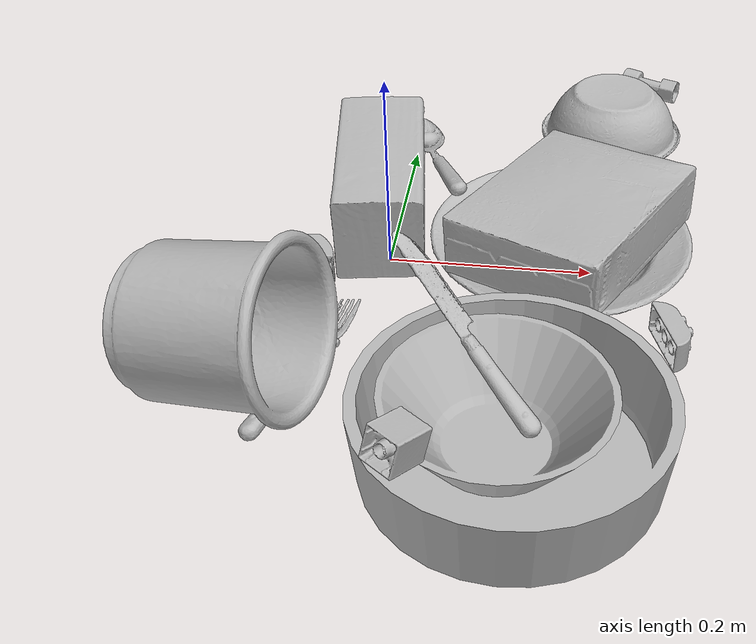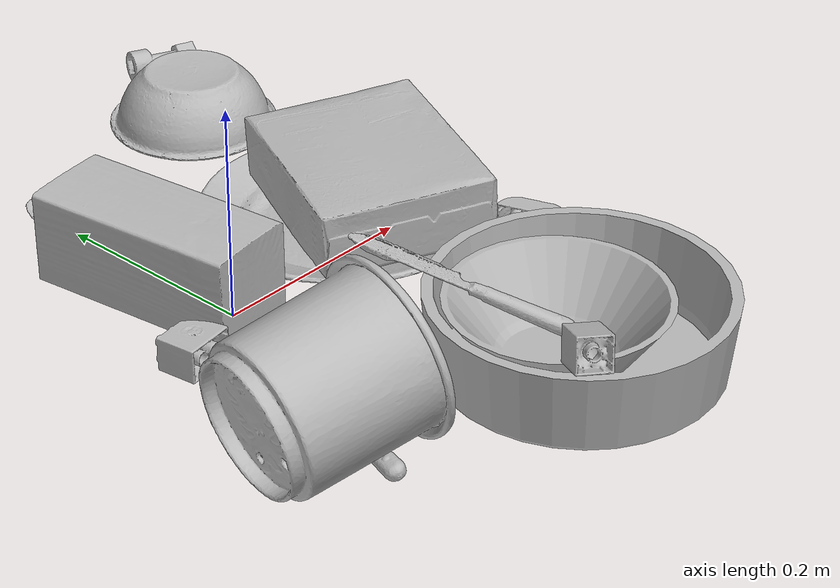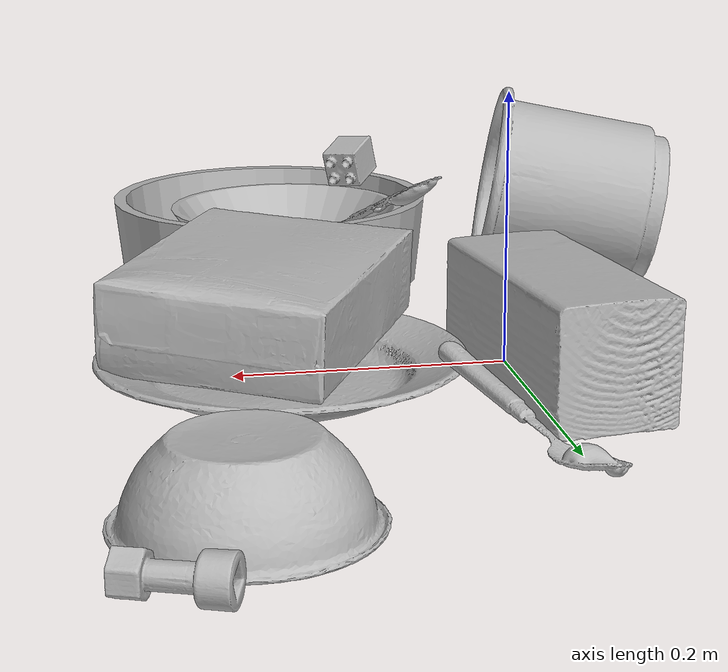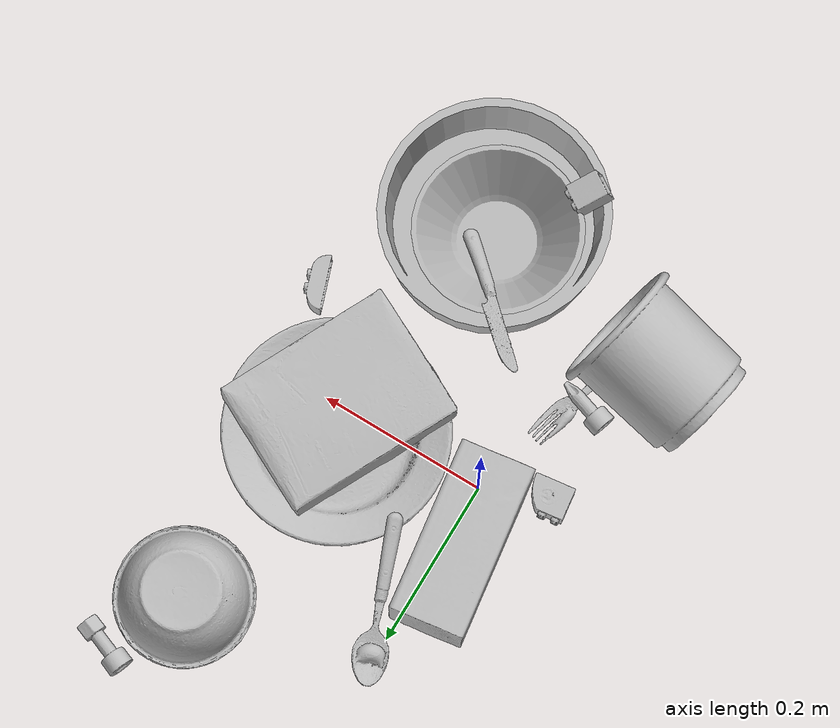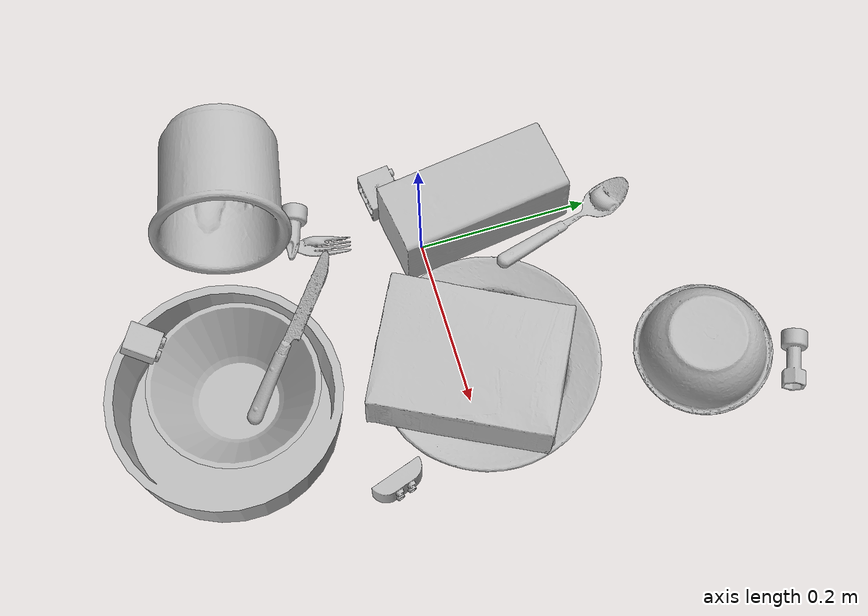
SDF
<sdf version="1.4">
  <world name="default">
    <light name="light1" type="point">
      <pose>0 0 1 0 0 0</pose>
      <diffuse>3 3 3 1</diffuse>
      <specular>3 3 3 1</specular>
    </light>
    <light name="light2" type="point">
      <pose>0 0.5 2 0 0 0</pose>
      <diffuse>1 1 1 1</diffuse>
      <specular>1 1 1 1</specular>
    </light>
    <light name="light3" type="point">
      <pose>0 0.5 2 0 0 0</pose>
      <diffuse>3 3 3 1</diffuse>
      <specular>3 3 3 1</specular>
    </light>
    <scene>
      <ambient>0.7 0.7 0.7</ambient>
    </scene>
    <model name="plate1">
      <link name="link_plate1">
        <collision name="default">
          <geometry>
            <mesh>
              <uri>model://pan_tefal/collision_meshes/collision.obj</uri>
              <scale>1.0 1.0 1.0</scale>
            </mesh>
          </geometry>
          <surface>
            <friction>
              <ode>
                <mu>0.5</mu>
                <mu2>0.5</mu2>
              </ode>
            </friction>
          <contact>
        <ode>
            <max_vel>0</max_vel>
            <min_depth>0.0001</min_depth>
            <kp>1e8</kp>
        </ode>
    </contact></surface>
        </collision>
        <visual name="default">
          <geometry>
            <mesh>
              <uri>model://pan_tefal/visual_meshes/visual.dae</uri>
              <scale>1.0 1.0 1.0</scale>
            </mesh>
          </geometry>
        </visual>
        <inertial>
          <mass>1.083925485610962</mass>
          <pose>-0.00018002053548116237 3.279013617429882e-05 -0.00851493701338768 0.000819031166138591 -0.00033013701589440335 -0.33186472787035126</pose>
          <inertia>
            <ixx>0.0074822875</ixx>
            <iyy>0.0075305253</iyy>
            <izz>0.013773448</izz>
            <ixy>0</ixy>
            <ixz>0</ixz>
            <iyz>0</iyz>
          </inertia>
        </inertial>
      </link>
      <pose>0.1406855583190918 -0.26691094040870667 0.03804999962449074 4.5627293055325796e-08 -3.6021995631304235e-08 1.5598404759642253</pose>
    </model>
    <model name="plate2">
      <link name="link_plate2">
        <collision name="default">
          <geometry>
            <mesh>
              <uri>model://plate/collision_meshes/collision.obj</uri>
              <scale>1.0 1.0 1.0</scale>
            </mesh>
          </geometry>
          <surface>
            <friction>
              <ode>
                <mu>0.5</mu>
                <mu2>0.5</mu2>
              </ode>
            </friction>
          <contact>
        <ode>
            <max_vel>0</max_vel>
            <min_depth>0.0001</min_depth>
            <kp>1e8</kp>
        </ode>
    </contact></surface>
        </collision>
        <visual name="default">
          <geometry>
            <mesh>
              <uri>model://plate/visual_meshes/visual.dae</uri>
              <scale>1.0 1.0 1.0</scale>
            </mesh>
          </geometry>
        </visual>
        <inertial>
          <mass>0.26740342378616333</mass>
          <pose>-0.00060446304269135 0.00027825793949887156 -0.0010561994276940823 0.0022187903743134635 -0.0032254779444460427 0.4526079808055429</pose>
          <inertia>
            <ixx>0.0012509191</ixx>
            <iyy>0.0012389544</iyy>
            <izz>0.00244661</izz>
            <ixy>0</ixy>
            <ixz>0</ixz>
            <iyz>0</iyz>
          </inertia>
        </inertial>
      </link>
      <pose>0.16814598441123962 0.029530441388487816 0.013764547184109688 3.778795286626435e-05 -0.0004584423882937724 1.3355292868834296</pose>
    </model>
    <model name="bowl1">
      <link name="link_bowl1">
        <collision name="default">
          <geometry>
            <mesh>
              <uri>model://bowl/collision_meshes/collision.obj</uri>
              <scale>1.0 1.0 1.0</scale>
            </mesh>
          </geometry>
          <surface>
            <friction>
              <ode>
                <mu>0.5</mu>
                <mu2>0.5</mu2>
              </ode>
            </friction>
          <contact>
        <ode>
            <max_vel>0</max_vel>
            <min_depth>0.0001</min_depth>
            <kp>1e8</kp>
        </ode>
    </contact></surface>
        </collision>
        <visual name="default">
          <geometry>
            <mesh>
              <uri>model://bowl/visual_meshes/visual.dae</uri>
              <scale>1.0 1.0 1.0</scale>
            </mesh>
          </geometry>
        </visual>
        <inertial>
          <mass>0.062040042132139206</mass>
          <pose>0.00020445157133508474 -0.001030211104080081 -0.0008042659028433263 -0.01576411046463803 0.014546752923574583 0.7140383763158871</pose>
          <inertia>
            <ixx>0.00014251085</ixx>
            <iyy>0.0001393266</iyy>
            <izz>0.00023975229</izz>
            <ixy>0</ixy>
            <ixz>0</ixz>
            <iyz>0</iyz>
          </inertia>
        </inertial>
      </link>
      <pose>0.2179299294948578 0.2754887342453003 0.027247348800301552 -3.132723955147526 0.0006754467192343899 2.1655227739079814</pose>
    </model>
    <model name="bowl2">
      <link name="link_bowl2">
        <collision name="default">
          <geometry>
            <mesh>
              <uri>model://bowl_a/collision_meshes/collision.obj</uri>
              <scale>1.0 1.0 1.0</scale>
            </mesh>
          </geometry>
          <surface>
            <friction>
              <ode>
                <mu>0.5</mu>
                <mu2>0.5</mu2>
              </ode>
            </friction>
          <contact>
        <ode>
            <max_vel>0</max_vel>
            <min_depth>0.0001</min_depth>
            <kp>1e8</kp>
        </ode>
    </contact></surface>
        </collision>
        <visual name="default">
          <geometry>
            <mesh>
              <uri>model://bowl_a/visual_meshes/visual.dae</uri>
              <scale>1.0 1.0 1.0</scale>
            </mesh>
          </geometry>
        </visual>
        <inertial>
          <mass>0.2882154881954193</mass>
          <pose>0.00027867534663528204 4.731079752673395e-05 -0.0013765293406322598 -0.0009805311525578244 -0.0010938248781945461 -0.19124031319294812</pose>
          <inertia>
            <ixx>0.00082056265</ixx>
            <iyy>0.0008256004</iyy>
            <izz>0.001459402</izz>
            <ixy>0</ixy>
            <ixz>0</ixz>
            <iyz>0</iyz>
          </inertia>
        </inertial>
      </link>
      <pose>0.12794697284698486 -0.2535286545753479 0.038181766867637634 -0.002409514578570278 0.0024776534662968204 2.9051619355333824</pose>
    </model>
    <model name="silverware1">
      <link name="link_silverware1">
        <collision name="default">
          <geometry>
            <mesh>
              <uri>model://fork/collision_meshes/collision.obj</uri>
              <scale>1.0 1.0 1.0</scale>
            </mesh>
          </geometry>
          <surface>
            <friction>
              <ode>
                <mu>0.5</mu>
                <mu2>0.5</mu2>
              </ode>
            </friction>
          <contact>
        <ode>
            <max_vel>0</max_vel>
            <min_depth>0.0001</min_depth>
            <kp>1e8</kp>
        </ode>
    </contact></surface>
        </collision>
        <visual name="default">
          <geometry>
            <mesh>
              <uri>model://fork/visual_meshes/visual.dae</uri>
              <scale>1.0 1.0 1.0</scale>
            </mesh>
          </geometry>
        </visual>
        <inertial>
          <mass>0.01398836076259613</mass>
          <pose>-0.02957003563642502 0.00046588244731538 0.0003218861238565296 -0.013550934691899108 -0.010977833142804767 0.01445389655901604</pose>
          <inertia>
            <ixx>4.903713e-07</ixx>
            <iyy>3.6519592e-05</iyy>
            <izz>3.673893e-05</izz>
            <ixy>0</ixy>
            <ixz>0</ixz>
            <iyz>0</iyz>
          </inertia>
        </inertial>
      </link>
      <pose>-0.05152544379234314 -0.1738477349281311 0.005742297973483801 -0.18754883171875164 0.024200795009245876 1.271608020923607</pose>
    </model>
    <model name="box1">
      <link name="link_box1">
        <collision name="default">
          <geometry>
            <mesh>
              <uri>model://cracker_box/collision_meshes/collision.obj</uri>
              <scale>1.0 1.0 1.0</scale>
            </mesh>
          </geometry>
          <surface>
            <friction>
              <ode>
                <mu>0.5</mu>
                <mu2>0.5</mu2>
              </ode>
            </friction>
          <contact>
        <ode>
            <max_vel>0</max_vel>
            <min_depth>0.0001</min_depth>
            <kp>1e8</kp>
        </ode>
    </contact></surface>
        </collision>
        <visual name="default">
          <geometry>
            <mesh>
              <uri>model://cracker_box/visual_meshes/visual.dae</uri>
              <scale>1.0 1.0 1.0</scale>
            </mesh>
          </geometry>
        </visual>
        <inertial>
          <mass>3.3038947582244873</mass>
          <pose>0.0009464139584451914 0.00025434247800149024 -0.0017029535956680775 -0.00031620753779881404 -0.011106489600569465 0.002546794535826719</pose>
          <inertia>
            <ixx>0.008403633</ixx>
            <iyy>0.013876048</iyy>
            <izz>0.019802397</izz>
            <ixy>0</ixy>
            <ixz>0</ixz>
            <iyz>0</iyz>
          </inertia>
        </inertial>
      </link>
      <pose>0.17806987464427948 0.0066483947448432446 0.058403775095939636 3.090499626335868 0.029277741134742203 1.1071799836315133</pose>
    </model>
    <model name="box2">
      <link name="link_box2">
        <collision name="default">
          <geometry>
            <mesh>
              <uri>model://wood_block/collision_meshes/collision.obj</uri>
              <scale>1.0 1.0 1.0</scale>
            </mesh>
          </geometry>
          <surface>
            <friction>
              <ode>
                <mu>0.5</mu>
                <mu2>0.5</mu2>
              </ode>
            </friction>
          <contact>
        <ode>
            <max_vel>0</max_vel>
            <min_depth>0.0001</min_depth>
            <kp>1e8</kp>
        </ode>
    </contact></surface>
        </collision>
        <visual name="default">
          <geometry>
            <mesh>
              <uri>model://wood_block/visual_meshes/visual.dae</uri>
              <scale>1.0 1.0 1.0</scale>
            </mesh>
          </geometry>
        </visual>
        <inertial>
          <mass>1.8317598104476929</mass>
          <pose>-5.813315510749817e-06 -0.000570809468626976 0.0002640858292579651 -0.05220774405774941 -0.005192695034541599 -0.006861378043904631</pose>
          <inertia>
            <ixx>0.0024511719</ixx>
            <iyy>0.0077432534</iyy>
            <izz>0.007714289</izz>
            <ixy>0</ixy>
            <ixz>0</ixz>
            <iyz>0</iyz>
          </inertia>
        </inertial>
      </link>
      <pose>-0.01954018510878086 0.06956348568201065 0.045258525758981705 -0.005208306948199686 0.005718774785417765 1.7108737960991671</pose>
    </model>
    <model name="cup1">
      <link name="link_cup1">
        <collision name="default">
          <geometry>
            <mesh>
              <uri>model://f_cups/collision_meshes/collision.obj</uri>
              <scale>2.0 2.0 2.0</scale>
            </mesh>
          </geometry>
          <surface>
            <friction>
              <ode>
                <mu>0.5</mu>
                <mu2>0.5</mu2>
              </ode>
            </friction>
          <contact>
        <ode>
            <max_vel>0</max_vel>
            <min_depth>0.0001</min_depth>
            <kp>1e8</kp>
        </ode>
    </contact></surface>
        </collision>
        <visual name="default">
          <geometry>
            <mesh>
              <uri>model://f_cups/visual_meshes/visual.dae</uri>
              <scale>2.0 2.0 2.0</scale>
            </mesh>
          </geometry>
        </visual>
        <inertial>
          <mass>0.8281989693641663</mass>
          <pose>-0.006342937704175711 -0.0012480166042223573 -0.007311076857149601 0.7862278170542254 -0.2607923358756499 -0.18237381375543787</pose>
          <inertia>
            <ixx>0.003114117</ixx>
            <iyy>0.0032667436</iyy>
            <izz>0.0034007723</izz>
            <ixy>0</ixy>
            <ixz>0</ixz>
            <iyz>0</iyz>
          </inertia>
        </inertial>
      </link>
      <pose>-0.10860221832990646 -0.20988032221794128 0.07808694988489151 1.2071828520786894 1.0643584237321104 1.048222914170368</pose>
    </model>
    <model name="silverware2">
      <link name="link_silverware2">
        <collision name="default">
          <geometry>
            <mesh>
              <uri>model://knife/collision_meshes/collision.obj</uri>
              <scale>1.0 1.0 1.0</scale>
            </mesh>
          </geometry>
          <surface>
            <friction>
              <ode>
                <mu>0.5</mu>
                <mu2>0.5</mu2>
              </ode>
            </friction>
          <contact>
        <ode>
            <max_vel>0</max_vel>
            <min_depth>0.0001</min_depth>
            <kp>1e8</kp>
        </ode>
    </contact></surface>
        </collision>
        <visual name="default">
          <geometry>
            <mesh>
              <uri>model://knife/visual_meshes/visual.dae</uri>
              <scale>1.0 1.0 1.0</scale>
            </mesh>
          </geometry>
        </visual>
        <inertial>
          <mass>0.033610157668590546</mass>
          <pose>-0.02378525771200657 0.0015275131445378065 5.0620201363926753e-05 0.07305356746503441 0.01724842347870745 -0.0074098216508425</pose>
          <inertia>
            <ixx>9.539925e-07</ixx>
            <iyy>0.00012912478</iyy>
            <izz>0.00012943202</izz>
            <ixy>0</ixy>
            <ixz>0</ixz>
            <iyz>0</iyz>
          </inertia>
        </inertial>
      </link>
      <pose>0.09385562688112259 -0.17881065607070923 0.0665162205696106 -0.16126930352318364 -0.49169392818939534 2.3609972244095623</pose>
    </model>
    <model name="silverware3">
      <link name="link_silverware3">
        <collision name="default">
          <geometry>
            <mesh>
              <uri>model://spoon/collision_meshes/collision.obj</uri>
              <scale>1.0 1.0 1.0</scale>
            </mesh>
          </geometry>
          <surface>
            <friction>
              <ode>
                <mu>0.5</mu>
                <mu2>0.5</mu2>
              </ode>
            </friction>
          <contact>
        <ode>
            <max_vel>0</max_vel>
            <min_depth>0.0001</min_depth>
            <kp>1e8</kp>
        </ode>
    </contact></surface>
        </collision>
        <visual name="default">
          <geometry>
            <mesh>
              <uri>model://spoon/visual_meshes/visual.dae</uri>
              <scale>1.0 1.0 1.0</scale>
            </mesh>
          </geometry>
        </visual>
        <inertial>
          <mass>0.03036251850426197</mass>
          <pose>-0.005526314955204725 -0.0016034168656915426 -0.0007271655485965312 0.035217258575681115 -0.03906584346489495 0.006150616147242728</pose>
          <inertia>
            <ixx>1.6888126e-06</ixx>
            <iyy>0.00011552838</iyy>
            <izz>0.00011636122</izz>
            <ixy>0</ixy>
            <ixz>0</ixz>
            <iyz>0</iyz>
          </inertia>
        </inertial>
      </link>
      <pose>0.025662731379270554 0.1658814698457718 0.01878555305302143 -0.16814702851277563 0.2082561614199206 1.9253497890213684</pose>
    </model>
    <model name="toy1">
      <link name="link_toy1">
        <collision name="default">
          <geometry>
            <mesh>
              <uri>model://d_lego_duplo/collision_meshes/collision.obj</uri>
              <scale>1.0 1.0 1.0</scale>
            </mesh>
          </geometry>
          <surface>
            <friction>
              <ode>
                <mu>0.5</mu>
                <mu2>0.5</mu2>
              </ode>
            </friction>
          <contact>
        <ode>
            <max_vel>0</max_vel>
            <min_depth>0.0001</min_depth>
            <kp>1e8</kp>
        </ode>
    </contact></surface>
        </collision>
        <visual name="default">
          <geometry>
            <mesh>
              <uri>model://d_lego_duplo/visual_meshes/visual.dae</uri>
              <scale>1.0 1.0 1.0</scale>
            </mesh>
          </geometry>
        </visual>
        <inertial>
          <mass>0.05888136848807335</mass>
          <pose>0.00283056334592402 0.00016366125782951713 0.0008589810458943248 0.0801088994423302 -0.3835518637869403 0.0010296847698221781</pose>
          <inertia>
            <ixx>1.1398561e-05</ixx>
            <iyy>1.6177655e-05</iyy>
            <izz>1.5601077e-05</izz>
            <ixy>0</ixy>
            <ixz>0</ixz>
            <iyz>0</iyz>
          </inertia>
        </inertial>
      </link>
      <pose>-0.0745212659239769 -0.02696819417178631 0.016400795429944992 1.5862182958522806 0.005141570813627334 -3.012093528757536</pose>
    </model>
    <model name="toy2">
      <link name="link_toy2">
        <collision name="default">
          <geometry>
            <mesh>
              <uri>model://d_toy_airplane/collision_meshes/collision.obj</uri>
              <scale>1.0 1.0 1.0</scale>
            </mesh>
          </geometry>
          <surface>
            <friction>
              <ode>
                <mu>0.5</mu>
                <mu2>0.5</mu2>
              </ode>
            </friction>
          <contact>
        <ode>
            <max_vel>0</max_vel>
            <min_depth>0.0001</min_depth>
            <kp>1e8</kp>
        </ode>
    </contact></surface>
        </collision>
        <visual name="default">
          <geometry>
            <mesh>
              <uri>model://d_toy_airplane/visual_meshes/visual.dae</uri>
              <scale>1.0 1.0 1.0</scale>
            </mesh>
          </geometry>
        </visual>
        <inertial>
          <mass>0.019283337518572807</mass>
          <pose>9.410297934664413e-05 -5.809335198136978e-05 -0.011728096753358841 0.00026677547083937895 0.00467899750463603 0.5194224971352938</pose>
          <inertia>
            <ixx>5.7807692e-06</ixx>
            <iyy>5.78513e-06</iyy>
            <izz>1.7452522e-06</izz>
            <ixy>0</ixy>
            <ixz>0</ixz>
            <iyz>0</iyz>
          </inertia>
        </inertial>
      </link>
      <pose>-0.054311707615852356 -0.141500324010849 0.015517712570726871 1.5538905587489433 -0.15855866148208198 1.2575919845820058</pose>
    </model>
    <model name="toy3">
      <link name="link_toy3">
        <collision name="default">
          <geometry>
            <mesh>
              <uri>model://b_lego_duplo/collision_meshes/collision.obj</uri>
              <scale>1.0 1.0 1.0</scale>
            </mesh>
          </geometry>
          <surface>
            <friction>
              <ode>
                <mu>0.5</mu>
                <mu2>0.5</mu2>
              </ode>
            </friction>
          <contact>
        <ode>
            <max_vel>0</max_vel>
            <min_depth>0.0001</min_depth>
            <kp>1e8</kp>
        </ode>
    </contact></surface>
        </collision>
        <visual name="default">
          <geometry>
            <mesh>
              <uri>model://b_lego_duplo/visual_meshes/visual.dae</uri>
              <scale>1.0 1.0 1.0</scale>
            </mesh>
          </geometry>
        </visual>
        <inertial>
          <mass>0.03460631147027016</mass>
          <pose>-0.00011053022171836346 -9.15238524612505e-06 0.0019294291269034147 -0.037494934713503944 -0.026353982766830427 0.45190023703794546</pose>
          <inertia>
            <ixx>7.082442e-06</ixx>
            <iyy>7.1300533e-06</iyy>
            <izz>6.310225e-06</izz>
            <ixy>0</ixy>
            <ixz>0</ixz>
            <iyz>0</iyz>
          </inertia>
        </inertial>
      </link>
      <pose>0.06085766851902008 -0.33632197976112366 0.08902101218700409 -2.8695504079038354 -1.2908616390725638 0.7172531150944297</pose>
    </model>
    <model name="toy4">
      <link name="link_toy4">
        <collision name="default">
          <geometry>
            <mesh>
              <uri>model://c_toy_airplane/collision_meshes/collision.obj</uri>
              <scale>1.0 1.0 1.0</scale>
            </mesh>
          </geometry>
          <surface>
            <friction>
              <ode>
                <mu>0.5</mu>
                <mu2>0.5</mu2>
              </ode>
            </friction>
          <contact>
        <ode>
            <max_vel>0</max_vel>
            <min_depth>0.0001</min_depth>
            <kp>1e8</kp>
        </ode>
    </contact></surface>
        </collision>
        <visual name="default">
          <geometry>
            <mesh>
              <uri>model://c_toy_airplane/visual_meshes/visual.dae</uri>
              <scale>1.0 1.0 1.0</scale>
            </mesh>
          </geometry>
        </visual>
        <inertial>
          <mass>0.03008922003209591</mass>
          <pose>-0.00023024248366709799 -4.429292062013701e-07 -0.006080532446503639 -0.006192764609865116 -0.016797726061543002 0.7654936540566961</pose>
          <inertia>
            <ixx>1.3816358e-05</ixx>
            <iyy>1.3777365e-05</iyy>
            <izz>3.2438072e-06</izz>
            <ixy>0</ixy>
            <ixz>0</ixz>
            <iyz>0</iyz>
          </inertia>
        </inertial>
      </link>
      <pose>0.26404550671577454 0.36802685260772705 0.015360521152615547 -1.591773767187444 -1.3189801173153535 -1.9278068685374967</pose>
    </model>
    <model name="toy5">
      <link name="link_toy5">
        <collision name="default">
          <geometry>
            <mesh>
              <uri>model://a_lego_duplo/collision_meshes/collision.obj</uri>
              <scale>1.0 1.0 1.0</scale>
            </mesh>
          </geometry>
          <surface>
            <friction>
              <ode>
                <mu>0.5</mu>
                <mu2>0.5</mu2>
              </ode>
            </friction>
          <contact>
        <ode>
            <max_vel>0</max_vel>
            <min_depth>0.0001</min_depth>
            <kp>1e8</kp>
        </ode>
    </contact></surface>
        </collision>
        <visual name="default">
          <geometry>
            <mesh>
              <uri>model://a_lego_duplo/visual_meshes/visual.dae</uri>
              <scale>1.0 1.0 1.0</scale>
            </mesh>
          </geometry>
        </visual>
        <inertial>
          <mass>0.02472195029258728</mass>
          <pose>-0.00011337580508552492 0.00018517558055464178 0.0003692609316203743 -0.014116968053030856 -0.00012565531185804749 6.140757465531037e-05</pose>
          <inertia>
            <ixx>3.1695524e-06</ixx>
            <iyy>7.100487e-06</iyy>
            <izz>8.795534e-06</izz>
            <ixy>0</ixy>
            <ixz>0</ixz>
            <iyz>0</iyz>
          </inertia>
        </inertial>
      </link>
      <pose>0.27725863456726074 -0.10435682535171509 0.016109004616737366 1.5707960414341509 2.9435765448161357e-07 1.9035786127586336</pose>
    </model>
  <physics type="ode">
      <max_contacts>50</max_contacts>
      <ode>
        <solver>
          <type>quick</type>
          <iters>75</iters>
        </solver>
        <constraints>
          <contact_max_correcting_vel>0</contact_max_correcting_vel>
          <contact_surface_layer>0</contact_surface_layer>
        </constraints>
      </ode>
    </physics></world>
</sdf>
